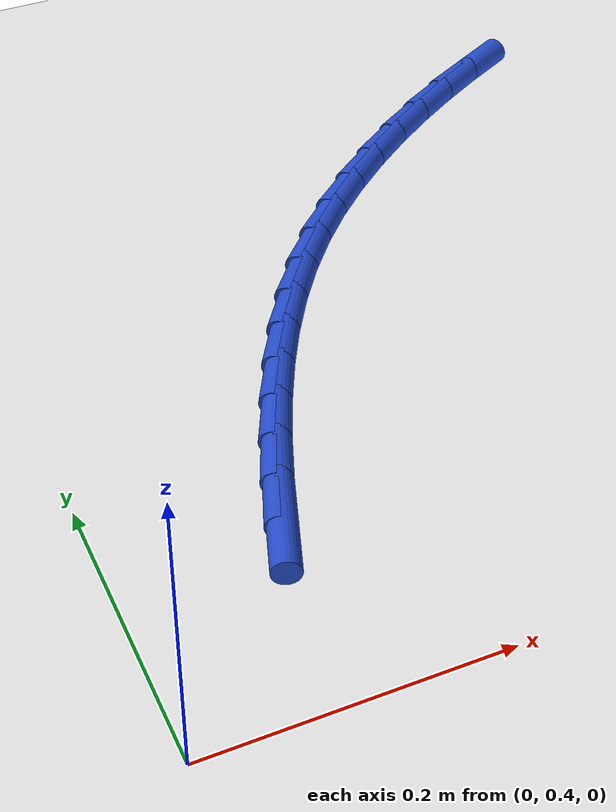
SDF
<sdf version="1.6">
 <world name="default">
  <model name="ground_plane">
   <static>1</static>
   <link name="link">
    <collision name="collision">
     <geometry><plane><normal>0 0 1</normal><size>100 100</size></plane></geometry>
     <surface><friction><ode><mu>100</mu><mu2>50</mu2></ode></friction></surface>
    </collision>
    <visual name="visual">
     <cast_shadows>0</cast_shadows>
     <geometry><plane><normal>0 0 1</normal><size>100 100</size></plane></geometry>
     <material>
      <script><uri>file://media/materials/scripts/gazebo.material</uri><name>Gazebo/WhiteGlow</name></script>
     </material>
    </visual>
   </link>
  </model>
  <model name="line">
   <link name="link_15">
    <pose>0.11042471000595751 0.5324906965388301 0.01 0 1.57 1.2373220945496048</pose>
    <collision name="collision">
     <geometry><cylinder><radius>0.01</radius><length>0.08</length></cylinder></geometry>
    </collision>
    <visual name="visual">
     <material>
      <script><name>Gazebo/Blue</name><uri>file://media/materials/scripts/gazebo.material</uri></script>
     </material>
     <geometry><cylinder><radius>0.01</radius><length>0.08</length></cylinder></geometry>
    </visual>
   </link>
   <link name="link_16">
    <pose>0.12238104831938887 0.5670055539707907 0.01 0 1.57 1.2040316661835129</pose>
    <collision name="collision">
     <geometry><cylinder><radius>0.01</radius><length>0.08</length></cylinder></geometry>
    </collision>
    <visual name="visual">
     <material>
      <script><name>Gazebo/Blue</name><uri>file://media/materials/scripts/gazebo.material</uri></script>
     </material>
     <geometry><cylinder><radius>0.01</radius><length>0.08</length></cylinder></geometry>
    </visual>
   </link>
   <link name="link_17">
    <pose>0.13538438505268607 0.6008555614385389 0.01 0 1.57 1.165261864110932</pose>
    <collision name="collision">
     <geometry><cylinder><radius>0.01</radius><length>0.08</length></cylinder></geometry>
    </collision>
    <visual name="visual">
     <material>
      <script><name>Gazebo/Blue</name><uri>file://media/materials/scripts/gazebo.material</uri></script>
     </material>
     <geometry><cylinder><radius>0.01</radius><length>0.08</length></cylinder></geometry>
    </visual>
   </link>
   <link name="link_18">
    <pose>0.14957679111059574 0.6339124830001137 0.01 0 1.57 1.1207892102602308</pose>
    <collision name="collision">
     <geometry><cylinder><radius>0.01</radius><length>0.08</length></cylinder></geometry>
    </collision>
    <visual name="visual">
     <material>
      <script><name>Gazebo/Blue</name><uri>file://media/materials/scripts/gazebo.material</uri></script>
     </material>
     <geometry><cylinder><radius>0.01</radius><length>0.08</length></cylinder></geometry>
    </visual>
   </link>
   <link name="link_19">
    <pose>0.16510033739786473 0.6660480827135544 0.01 0 1.57 1.0704402501146315</pose>
    <collision name="collision">
     <geometry><cylinder><radius>0.01</radius><length>0.08</length></cylinder></geometry>
    </collision>
    <visual name="visual">
     <material>
      <script><name>Gazebo/Blue</name><uri>file://media/materials/scripts/gazebo.material</uri></script>
     </material>
     <geometry><cylinder><radius>0.01</radius><length>0.08</length></cylinder></geometry>
    </visual>
   </link>
   <link name="link_20">
    <pose>0.1820970948192397 0.6971341246369 0.01 0 1.57 1.0141376483867708</pose>
    <collision name="collision">
     <geometry><cylinder><radius>0.01</radius><length>0.08</length></cylinder></geometry>
    </collision>
    <visual name="visual">
     <material>
      <script><name>Gazebo/Blue</name><uri>file://media/materials/scripts/gazebo.material</uri></script>
     </material>
     <geometry><cylinder><radius>0.01</radius><length>0.08</length></cylinder></geometry>
    </visual>
   </link>
   <link name="link_21">
    <pose>0.2007091342794674 0.7270423728281898 0.01 0 1.57 0.9519549781684653</pose>
    <collision name="collision">
     <geometry><cylinder><radius>0.01</radius><length>0.08</length></cylinder></geometry>
    </collision>
    <visual name="visual">
     <material>
      <script><name>Gazebo/Blue</name><uri>file://media/materials/scripts/gazebo.material</uri></script>
     </material>
     <geometry><cylinder><radius>0.01</radius><length>0.08</length></cylinder></geometry>
    </visual>
   </link>
   <link name="link_22">
    <pose>0.22107852668329459 0.7556445913454629 0.01 0 1.57 0.8842377619367613</pose>
    <collision name="collision">
     <geometry><cylinder><radius>0.01</radius><length>0.08</length></cylinder></geometry>
    </collision>
    <visual name="visual">
     <material>
      <script><name>Gazebo/Blue</name><uri>file://media/materials/scripts/gazebo.material</uri></script>
     </material>
     <geometry><cylinder><radius>0.01</radius><length>0.08</length></cylinder></geometry>
    </visual>
   </link>
   <link name="link_23">
    <pose>0.24334543017454585 0.7828137049964042 0.01 0 1.57 0.8153738039238577</pose>
    <collision name="collision">
     <geometry><cylinder><radius>0.01</radius><length>0.08</length></cylinder></geometry>
    </collision>
    <visual name="visual">
     <material>
      <script><name>Gazebo/Blue</name><uri>file://media/materials/scripts/gazebo.material</uri></script>
     </material>
     <geometry><cylinder><radius>0.01</radius><length>0.08</length></cylinder></geometry>
    </visual>
   </link>
   <link name="link_24">
    <pose>0.2675312133655589 0.8084947254371191 0.01 0 1.57 0.751770016367098</pose>
    <collision name="collision">
     <geometry><cylinder><radius>0.01</radius><length>0.08</length></cylinder></geometry>
    </collision>
    <visual name="visual">
     <material>
      <script><name>Gazebo/Blue</name><uri>file://media/materials/scripts/gazebo.material</uri></script>
     </material>
     <geometry><cylinder><radius>0.01</radius><length>0.08</length></cylinder></geometry>
    </visual>
   </link>
   <link name="link_25">
    <pose>0.29347076932197735 0.8327458261006809 0.01 0 1.57 0.6939370042739761</pose>
    <collision name="collision">
     <geometry><cylinder><radius>0.01</radius><length>0.08</length></cylinder></geometry>
    </collision>
    <visual name="visual">
     <material>
      <script><name>Gazebo/Blue</name><uri>file://media/materials/scripts/gazebo.material</uri></script>
     </material>
     <geometry><cylinder><radius>0.01</radius><length>0.08</length></cylinder></geometry>
    </visual>
   </link>
   <link name="link_26">
    <pose>0.3209826721498838 0.8556350835012648 0.01 0 1.57 0.6416911725735465</pose>
    <collision name="collision">
     <geometry><cylinder><radius>0.01</radius><length>0.08</length></cylinder></geometry>
    </collision>
    <visual name="visual">
     <material>
      <script><name>Gazebo/Blue</name><uri>file://media/materials/scripts/gazebo.material</uri></script>
     </material>
     <geometry><cylinder><radius>0.01</radius><length>0.08</length></cylinder></geometry>
    </visual>
   </link>
   <link name="link_27">
    <pose>0.3498854959553605 0.8772305741530455 0.01 0 1.57 0.594752475936522</pose>
    <collision name="collision">
     <geometry><cylinder><radius>0.01</radius><length>0.08</length></cylinder></geometry>
    </collision>
    <visual name="visual">
     <material>
      <script><name>Gazebo/Blue</name><uri>file://media/materials/scripts/gazebo.material</uri></script>
     </material>
     <geometry><cylinder><radius>0.01</radius><length>0.08</length></cylinder></geometry>
    </visual>
   </link>
   <link name="link_28">
    <pose>0.37999781484449 0.8976003745701978 0.01 0 1.57 0.5527924874781935</pose>
    <collision name="collision">
     <geometry><cylinder><radius>0.01</radius><length>0.08</length></cylinder></geometry>
    </collision>
    <visual name="visual">
     <material>
      <script><name>Gazebo/Blue</name><uri>file://media/materials/scripts/gazebo.material</uri></script>
     </material>
     <geometry><cylinder><radius>0.01</radius><length>0.08</length></cylinder></geometry>
    </visual>
   </link>
   <link name="link_29">
    <pose>0.41113820292335507 0.9168125612668966 0.01 0 1.57 0.5154700858104321</pose>
    <collision name="collision">
     <geometry><cylinder><radius>0.01</radius><length>0.08</length></cylinder></geometry>
    </collision>
    <visual name="visual">
     <material>
      <script><name>Gazebo/Blue</name><uri>file://media/materials/scripts/gazebo.material</uri></script>
     </material>
     <geometry><cylinder><radius>0.01</radius><length>0.08</length></cylinder></geometry>
    </visual>
   </link>
   <link name="link_30">
    <pose>0.4431252342980375 0.9349352107573163 0.01 0 1.57 0.482456335545518</pose>
    <collision name="collision">
     <geometry><cylinder><radius>0.01</radius><length>0.08</length></cylinder></geometry>
    </collision>
    <visual name="visual">
     <material>
      <script><name>Gazebo/Blue</name><uri>file://media/materials/scripts/gazebo.material</uri></script>
     </material>
     <geometry><cylinder><radius>0.01</radius><length>0.08</length></cylinder></geometry>
    </visual>
   </link>
  </model>
 </world>
</sdf>
